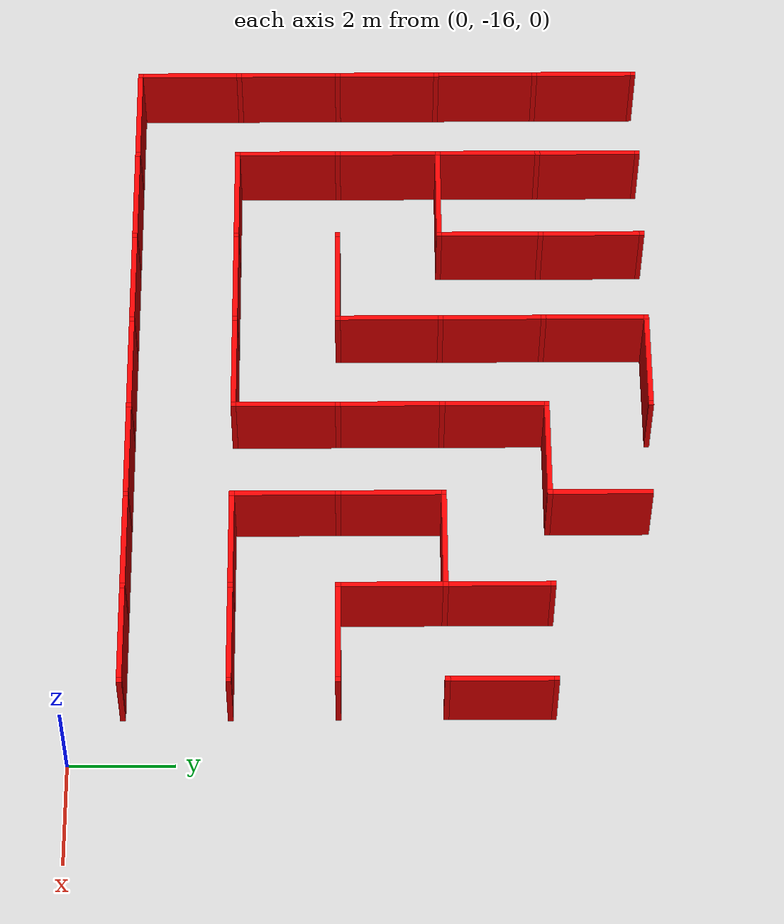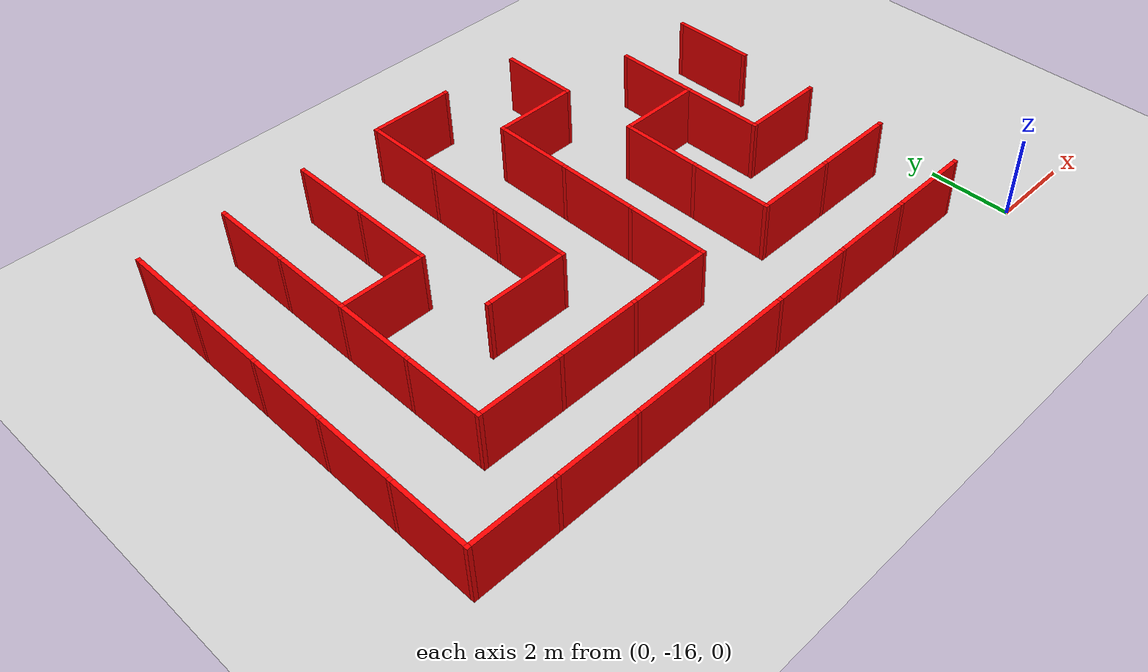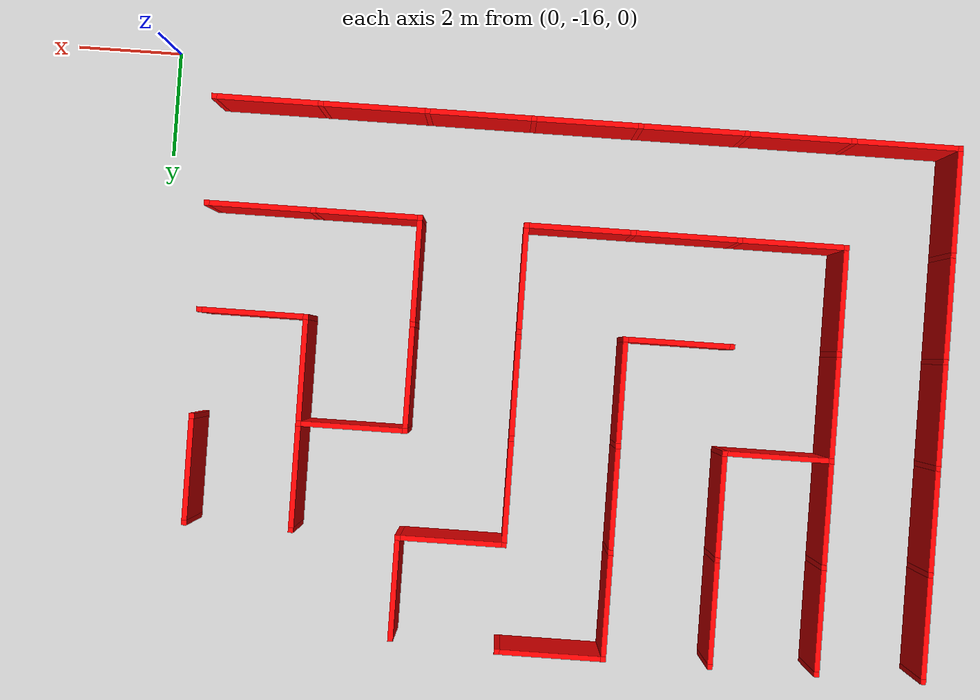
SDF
<sdf version="1.7">
 <world name="empty">
  <model name="ground_plane">
   <static>true</static>
   <link name="link">
    <collision name="collision1">
     <geometry><plane><normal>0 0 1</normal><size>1 1</size></plane></geometry>
    </collision>
    <visual name="visual1"><geometry><plane><normal>0 0 1</normal><size>100 100</size></plane></geometry></visual>
   </link>
  </model>
  <model name="Untitled">
   <link name="Wall_0_10_v">
    <collision name="Wall_0_Collision">
     <geometry><box><size>1.9 0.1 1.5</size></box></geometry>
     <pose>0 0 0.75 0 -0 0</pose>
    </collision>
    <visual name="Wall_0_Visual">
     <pose>0 0 0.75 0 -0 0</pose>
     <geometry><box><size>1.9 0.1 1.5</size></box></geometry>
     <material><ambient>1 0 0 1</ambient><diffuse>1 0 0 1</diffuse><specular>0.1 0.1 0.1 1</specular></material>
     <meta><layer>0</layer></meta>
    </visual>
    <pose>-15 -6 0 0 -0 1.5708</pose>
   </link>
   <link name="Joint_-15_-5">
    <collision name="Wall_2_Collision">
     <geometry><box><size>0.1 0.1 1.5</size></box></geometry>
     <pose>0 0 0.75 0 -0 0</pose>
    </collision>
    <visual name="Wall_2_Visual">
     <pose>0 0 0.75 0 -0 0</pose>
     <geometry><box><size>0.1 0.1 1.5</size></box></geometry>
     <material><ambient>1 0 0 1</ambient><diffuse>1 0 0 1</diffuse><specular>0.1 0.1 0.1 1</specular></material>
     <meta><layer>0</layer></meta>
    </visual>
    <pose>-15 -5 0 0 -0 0</pose>
   </link>
   <link name="Wall_1_10_v">
    <collision name="Wall_0_Collision">
     <geometry><box><size>1.9 0.1 1.5</size></box></geometry>
     <pose>0 0 0.75 0 -0 0</pose>
    </collision>
    <visual name="Wall_0_Visual">
     <pose>0 0 0.75 0 -0 0</pose>
     <geometry><box><size>1.9 0.1 1.5</size></box></geometry>
     <material><ambient>1 0 0 1</ambient><diffuse>1 0 0 1</diffuse><specular>0.1 0.1 0.1 1</specular></material>
     <meta><layer>0</layer></meta>
    </visual>
    <pose>-13 -6 0 0 -0 1.5708</pose>
   </link>
   <link name="Joint_-13_-5">
    <collision name="Wall_2_Collision">
     <geometry><box><size>0.1 0.1 1.5</size></box></geometry>
     <pose>0 0 0.75 0 -0 0</pose>
    </collision>
    <visual name="Wall_2_Visual">
     <pose>0 0 0.75 0 -0 0</pose>
     <geometry><box><size>0.1 0.1 1.5</size></box></geometry>
     <material><ambient>1 0 0 1</ambient><diffuse>1 0 0 1</diffuse><specular>0.1 0.1 0.1 1</specular></material>
     <meta><layer>0</layer></meta>
    </visual>
    <pose>-13 -5 0 0 -0 0</pose>
   </link>
   <link name="Wall_2_10_v">
    <collision name="Wall_0_Collision">
     <geometry><box><size>1.9 0.1 1.5</size></box></geometry>
     <pose>0 0 0.75 0 -0 0</pose>
    </collision>
    <visual name="Wall_0_Visual">
     <pose>0 0 0.75 0 -0 0</pose>
     <geometry><box><size>1.9 0.1 1.5</size></box></geometry>
     <material><ambient>1 0 0 1</ambient><diffuse>1 0 0 1</diffuse><specular>0.1 0.1 0.1 1</specular></material>
     <meta><layer>0</layer></meta>
    </visual>
    <pose>-11 -6 0 0 -0 1.5708</pose>
   </link>
   <link name="Joint_-11_-5">
    <collision name="Wall_2_Collision">
     <geometry><box><size>0.1 0.1 1.5</size></box></geometry>
     <pose>0 0 0.75 0 -0 0</pose>
    </collision>
    <visual name="Wall_2_Visual">
     <pose>0 0 0.75 0 -0 0</pose>
     <geometry><box><size>0.1 0.1 1.5</size></box></geometry>
     <material><ambient>1 0 0 1</ambient><diffuse>1 0 0 1</diffuse><specular>0.1 0.1 0.1 1</specular></material>
     <meta><layer>0</layer></meta>
    </visual>
    <pose>-11 -5 0 0 -0 0</pose>
   </link>
   <link name="Wall_3_10_h">
    <collision name="Wall_0_Collision">
     <geometry><box><size>1.9 0.1 1.5</size></box></geometry>
     <pose>0 0 0.75 0 -0 0</pose>
    </collision>
    <visual name="Wall_0_Visual">
     <pose>0 0 0.75 0 -0 0</pose>
     <geometry><box><size>1.9 0.1 1.5</size></box></geometry>
     <material><ambient>1 0 0 1</ambient><diffuse>1 0 0 1</diffuse><specular>0.1 0.1 0.1 1</specular></material>
     <meta><layer>0</layer></meta>
    </visual>
    <pose>-8 -5 0 0 -0 0</pose>
   </link>
   <link name="Wall_3_10_v">
    <collision name="Wall_0_Collision">
     <geometry><box><size>1.9 0.1 1.5</size></box></geometry>
     <pose>0 0 0.75 0 -0 0</pose>
    </collision>
    <visual name="Wall_0_Visual">
     <pose>0 0 0.75 0 -0 0</pose>
     <geometry><box><size>1.9 0.1 1.5</size></box></geometry>
     <material><ambient>1 0 0 1</ambient><diffuse>1 0 0 1</diffuse><specular>0.1 0.1 0.1 1</specular></material>
     <meta><layer>0</layer></meta>
    </visual>
    <pose>-9 -6 0 0 -0 1.5708</pose>
   </link>
   <link name="Joint_-9_-5">
    <collision name="Wall_2_Collision">
     <geometry><box><size>0.1 0.1 1.5</size></box></geometry>
     <pose>0 0 0.75 0 -0 0</pose>
    </collision>
    <visual name="Wall_2_Visual">
     <pose>0 0 0.75 0 -0 0</pose>
     <geometry><box><size>0.1 0.1 1.5</size></box></geometry>
     <material><ambient>1 0 0 1</ambient><diffuse>1 0 0 1</diffuse><specular>0.1 0.1 0.1 1</specular></material>
     <meta><layer>0</layer></meta>
    </visual>
    <pose>-9 -5 0 0 -0 0</pose>
   </link>
   <link name="Joint_-7_-5">
    <collision name="Wall_2_Collision">
     <geometry><box><size>0.1 0.1 1.5</size></box></geometry>
     <pose>0 0 0.75 0 -0 0</pose>
    </collision>
    <visual name="Wall_2_Visual">
     <pose>0 0 0.75 0 -0 0</pose>
     <geometry><box><size>0.1 0.1 1.5</size></box></geometry>
     <material><ambient>1 0 0 1</ambient><diffuse>1 0 0 1</diffuse><specular>0.1 0.1 0.1 1</specular></material>
     <meta><layer>0</layer></meta>
    </visual>
    <pose>-7 -5 0 0 -0 0</pose>
   </link>
   <link name="Wall_5_10_v">
    <collision name="Wall_0_Collision">
     <geometry><box><size>1.9 0.1 1.5</size></box></geometry>
     <pose>0 0 0.75 0 -0 0</pose>
    </collision>
    <visual name="Wall_0_Visual">
     <pose>0 0 0.75 0 -0 0</pose>
     <geometry><box><size>1.9 0.1 1.5</size></box></geometry>
     <material><ambient>1 0 0 1</ambient><diffuse>1 0 0 1</diffuse><specular>0.1 0.1 0.1 1</specular></material>
     <meta><layer>0</layer></meta>
    </visual>
    <pose>-5 -6 0 0 -0 1.5708</pose>
   </link>
   <link name="Wall_0_11_v">
    <collision name="Wall_0_Collision">
     <geometry><box><size>1.9 0.1 1.5</size></box></geometry>
     <pose>0 0 0.75 0 -0 0</pose>
    </collision>
    <visual name="Wall_0_Visual">
     <pose>0 0 0.75 0 -0 0</pose>
     <geometry><box><size>1.9 0.1 1.5</size></box></geometry>
     <material><ambient>1 0 0 1</ambient><diffuse>1 0 0 1</diffuse><specular>0.1 0.1 0.1 1</specular></material>
     <meta><layer>0</layer></meta>
    </visual>
    <pose>-15 -8 0 0 -0 1.5708</pose>
   </link>
   <link name="Joint_-15_-7">
    <collision name="Wall_2_Collision">
     <geometry><box><size>0.1 0.1 1.5</size></box></geometry>
     <pose>0 0 0.75 0 -0 0</pose>
    </collision>
    <visual name="Wall_2_Visual">
     <pose>0 0 0.75 0 -0 0</pose>
     <geometry><box><size>0.1 0.1 1.5</size></box></geometry>
     <material><ambient>1 0 0 1</ambient><diffuse>1 0 0 1</diffuse><specular>0.1 0.1 0.1 1</specular></material>
     <meta><layer>0</layer></meta>
    </visual>
    <pose>-15 -7 0 0 -0 0</pose>
   </link>
   <link name="Wall_1_11_v">
    <collision name="Wall_0_Collision">
     <geometry><box><size>1.9 0.1 1.5</size></box></geometry>
     <pose>0 0 0.75 0 -0 0</pose>
    </collision>
    <visual name="Wall_0_Visual">
     <pose>0 0 0.75 0 -0 0</pose>
     <geometry><box><size>1.9 0.1 1.5</size></box></geometry>
     <material><ambient>1 0 0 1</ambient><diffuse>1 0 0 1</diffuse><specular>0.1 0.1 0.1 1</specular></material>
     <meta><layer>0</layer></meta>
    </visual>
    <pose>-13 -8 0 0 -0 1.5708</pose>
   </link>
   <link name="Joint_-13_-7">
    <collision name="Wall_2_Collision">
     <geometry><box><size>0.1 0.1 1.5</size></box></geometry>
     <pose>0 0 0.75 0 -0 0</pose>
    </collision>
    <visual name="Wall_2_Visual">
     <pose>0 0 0.75 0 -0 0</pose>
     <geometry><box><size>0.1 0.1 1.5</size></box></geometry>
     <material><ambient>1 0 0 1</ambient><diffuse>1 0 0 1</diffuse><specular>0.1 0.1 0.1 1</specular></material>
     <meta><layer>0</layer></meta>
    </visual>
    <pose>-13 -7 0 0 -0 0</pose>
   </link>
   <link name="Wall_2_11_v">
    <collision name="Wall_0_Collision">
     <geometry><box><size>1.9 0.1 1.5</size></box></geometry>
     <pose>0 0 0.75 0 -0 0</pose>
    </collision>
    <visual name="Wall_0_Visual">
     <pose>0 0 0.75 0 -0 0</pose>
     <geometry><box><size>1.9 0.1 1.5</size></box></geometry>
     <material><ambient>1 0 0 1</ambient><diffuse>1 0 0 1</diffuse><specular>0.1 0.1 0.1 1</specular></material>
     <meta><layer>0</layer></meta>
    </visual>
    <pose>-11 -8 0 0 -0 1.5708</pose>
   </link>
   <link name="Joint_-11_-7">
    <collision name="Wall_2_Collision">
     <geometry><box><size>0.1 0.1 1.5</size></box></geometry>
     <pose>0 0 0.75 0 -0 0</pose>
    </collision>
    <visual name="Wall_2_Visual">
     <pose>0 0 0.75 0 -0 0</pose>
     <geometry><box><size>0.1 0.1 1.5</size></box></geometry>
     <material><ambient>1 0 0 1</ambient><diffuse>1 0 0 1</diffuse><specular>0.1 0.1 0.1 1</specular></material>
     <meta><layer>0</layer></meta>
    </visual>
    <pose>-11 -7 0 0 -0 0</pose>
   </link>
   <link name="Wall_3_11_v">
    <collision name="Wall_0_Collision">
     <geometry><box><size>1.9 0.1 1.5</size></box></geometry>
     <pose>0 0 0.75 0 -0 0</pose>
    </collision>
    <visual name="Wall_0_Visual">
     <pose>0 0 0.75 0 -0 0</pose>
     <geometry><box><size>1.9 0.1 1.5</size></box></geometry>
     <material><ambient>1 0 0 1</ambient><diffuse>1 0 0 1</diffuse><specular>0.1 0.1 0.1 1</specular></material>
     <meta><layer>0</layer></meta>
    </visual>
    <pose>-9 -8 0 0 -0 1.5708</pose>
   </link>
   <link name="Joint_-9_-7">
    <collision name="Wall_2_Collision">
     <geometry><box><size>0.1 0.1 1.5</size></box></geometry>
     <pose>0 0 0.75 0 -0 0</pose>
    </collision>
    <visual name="Wall_2_Visual">
     <pose>0 0 0.75 0 -0 0</pose>
     <geometry><box><size>0.1 0.1 1.5</size></box></geometry>
     <material><ambient>1 0 0 1</ambient><diffuse>1 0 0 1</diffuse><specular>0.1 0.1 0.1 1</specular></material>
     <meta><layer>0</layer></meta>
    </visual>
    <pose>-9 -7 0 0 -0 0</pose>
   </link>
   <link name="Wall_4_11_h">
    <collision name="Wall_0_Collision">
     <geometry><box><size>1.9 0.1 1.5</size></box></geometry>
     <pose>0 0 0.75 0 -0 0</pose>
    </collision>
    <visual name="Wall_0_Visual">
     <pose>0 0 0.75 0 -0 0</pose>
     <geometry><box><size>1.9 0.1 1.5</size></box></geometry>
     <material><ambient>1 0 0 1</ambient><diffuse>1 0 0 1</diffuse><specular>0.1 0.1 0.1 1</specular></material>
     <meta><layer>0</layer></meta>
    </visual>
    <pose>-6 -7 0 0 -0 0</pose>
   </link>
   <link name="Wall_4_11_v">
    <collision name="Wall_0_Collision">
     <geometry><box><size>1.9 0.1 1.5</size></box></geometry>
     <pose>0 0 0.75 0 -0 0</pose>
    </collision>
    <visual name="Wall_0_Visual">
     <pose>0 0 0.75 0 -0 0</pose>
     <geometry><box><size>1.9 0.1 1.5</size></box></geometry>
     <material><ambient>1 0 0 1</ambient><diffuse>1 0 0 1</diffuse><specular>0.1 0.1 0.1 1</specular></material>
     <meta><layer>0</layer></meta>
    </visual>
    <pose>-7 -8 0 0 -0 1.5708</pose>
   </link>
   <link name="Joint_-7_-7">
    <collision name="Wall_2_Collision">
     <geometry><box><size>0.1 0.1 1.5</size></box></geometry>
     <pose>0 0 0.75 0 -0 0</pose>
    </collision>
    <visual name="Wall_2_Visual">
     <pose>0 0 0.75 0 -0 0</pose>
     <geometry><box><size>0.1 0.1 1.5</size></box></geometry>
     <material><ambient>1 0 0 1</ambient><diffuse>1 0 0 1</diffuse><specular>0.1 0.1 0.1 1</specular></material>
     <meta><layer>0</layer></meta>
    </visual>
    <pose>-7 -7 0 0 -0 0</pose>
   </link>
   <link name="Joint_-5_-7">
    <collision name="Wall_2_Collision">
     <geometry><box><size>0.1 0.1 1.5</size></box></geometry>
     <pose>0 0 0.75 0 -0 0</pose>
    </collision>
    <visual name="Wall_2_Visual">
     <pose>0 0 0.75 0 -0 0</pose>
     <geometry><box><size>0.1 0.1 1.5</size></box></geometry>
     <material><ambient>1 0 0 1</ambient><diffuse>1 0 0 1</diffuse><specular>0.1 0.1 0.1 1</specular></material>
     <meta><layer>0</layer></meta>
    </visual>
    <pose>-5 -7 0 0 -0 0</pose>
   </link>
   <link name="Wall_6_11_v">
    <collision name="Wall_0_Collision">
     <geometry><box><size>1.9 0.1 1.5</size></box></geometry>
     <pose>0 0 0.75 0 -0 0</pose>
    </collision>
    <visual name="Wall_0_Visual">
     <pose>0 0 0.75 0 -0 0</pose>
     <geometry><box><size>1.9 0.1 1.5</size></box></geometry>
     <material><ambient>1 0 0 1</ambient><diffuse>1 0 0 1</diffuse><specular>0.1 0.1 0.1 1</specular></material>
     <meta><layer>0</layer></meta>
    </visual>
    <pose>-3 -8 0 0 -0 1.5708</pose>
   </link>
   <link name="Joint_-3_-7">
    <collision name="Wall_2_Collision">
     <geometry><box><size>0.1 0.1 1.5</size></box></geometry>
     <pose>0 0 0.75 0 -0 0</pose>
    </collision>
    <visual name="Wall_2_Visual">
     <pose>0 0 0.75 0 -0 0</pose>
     <geometry><box><size>0.1 0.1 1.5</size></box></geometry>
     <material><ambient>1 0 0 1</ambient><diffuse>1 0 0 1</diffuse><specular>0.1 0.1 0.1 1</specular></material>
     <meta><layer>0</layer></meta>
    </visual>
    <pose>-3 -7 0 0 -0 0</pose>
   </link>
   <link name="Wall_7_11_v">
    <collision name="Wall_0_Collision">
     <geometry><box><size>1.9 0.1 1.5</size></box></geometry>
     <pose>0 0 0.75 0 -0 0</pose>
    </collision>
    <visual name="Wall_0_Visual">
     <pose>0 0 0.75 0 -0 0</pose>
     <geometry><box><size>1.9 0.1 1.5</size></box></geometry>
     <material><ambient>1 0 0 1</ambient><diffuse>1 0 0 1</diffuse><specular>0.1 0.1 0.1 1</specular></material>
     <meta><layer>0</layer></meta>
    </visual>
    <pose>-1 -8 0 0 -0 1.5708</pose>
   </link>
   <link name="Joint_-1_-7">
    <collision name="Wall_2_Collision">
     <geometry><box><size>0.1 0.1 1.5</size></box></geometry>
     <pose>0 0 0.75 0 -0 0</pose>
    </collision>
    <visual name="Wall_2_Visual">
     <pose>0 0 0.75 0 -0 0</pose>
     <geometry><box><size>0.1 0.1 1.5</size></box></geometry>
     <material><ambient>1 0 0 1</ambient><diffuse>1 0 0 1</diffuse><specular>0.1 0.1 0.1 1</specular></material>
     <meta><layer>0</layer></meta>
    </visual>
    <pose>-1 -7 0 0 -0 0</pose>
   </link>
   <link name="Wall_0_12_v">
    <collision name="Wall_0_Collision">
     <geometry><box><size>1.9 0.1 1.5</size></box></geometry>
     <pose>0 0 0.75 0 -0 0</pose>
    </collision>
    <visual name="Wall_0_Visual">
     <pose>0 0 0.75 0 -0 0</pose>
     <geometry><box><size>1.9 0.1 1.5</size></box></geometry>
     <material><ambient>1 0 0 1</ambient><diffuse>1 0 0 1</diffuse><specular>0.1 0.1 0.1 1</specular></material>
     <meta><layer>0</layer></meta>
    </visual>
    <pose>-15 -10 0 0 -0 1.5708</pose>
   </link>
   <link name="Joint_-15_-9">
    <collision name="Wall_2_Collision">
     <geometry><box><size>0.1 0.1 1.5</size></box></geometry>
     <pose>0 0 0.75 0 -0 0</pose>
    </collision>
    <visual name="Wall_2_Visual">
     <pose>0 0 0.75 0 -0 0</pose>
     <geometry><box><size>0.1 0.1 1.5</size></box></geometry>
     <material><ambient>1 0 0 1</ambient><diffuse>1 0 0 1</diffuse><specular>0.1 0.1 0.1 1</specular></material>
     <meta><layer>0</layer></meta>
    </visual>
    <pose>-15 -9 0 0 -0 0</pose>
   </link>
   <link name="Wall_1_12_h">
    <collision name="Wall_0_Collision">
     <geometry><box><size>1.9 0.1 1.5</size></box></geometry>
     <pose>0 0 0.75 0 -0 0</pose>
    </collision>
    <visual name="Wall_0_Visual">
     <pose>0 0 0.75 0 -0 0</pose>
     <geometry><box><size>1.9 0.1 1.5</size></box></geometry>
     <material><ambient>1 0 0 1</ambient><diffuse>1 0 0 1</diffuse><specular>0.1 0.1 0.1 1</specular></material>
     <meta><layer>0</layer></meta>
    </visual>
    <pose>-12 -9 0 0 -0 0</pose>
   </link>
   <link name="Wall_1_12_v">
    <collision name="Wall_0_Collision">
     <geometry><box><size>1.9 0.1 1.5</size></box></geometry>
     <pose>0 0 0.75 0 -0 0</pose>
    </collision>
    <visual name="Wall_0_Visual">
     <pose>0 0 0.75 0 -0 0</pose>
     <geometry><box><size>1.9 0.1 1.5</size></box></geometry>
     <material><ambient>1 0 0 1</ambient><diffuse>1 0 0 1</diffuse><specular>0.1 0.1 0.1 1</specular></material>
     <meta><layer>0</layer></meta>
    </visual>
    <pose>-13 -10 0 0 -0 1.5708</pose>
   </link>
   <link name="Joint_-13_-9">
    <collision name="Wall_2_Collision">
     <geometry><box><size>0.1 0.1 1.5</size></box></geometry>
     <pose>0 0 0.75 0 -0 0</pose>
    </collision>
    <visual name="Wall_2_Visual">
     <pose>0 0 0.75 0 -0 0</pose>
     <geometry><box><size>0.1 0.1 1.5</size></box></geometry>
     <material><ambient>1 0 0 1</ambient><diffuse>1 0 0 1</diffuse><specular>0.1 0.1 0.1 1</specular></material>
     <meta><layer>0</layer></meta>
    </visual>
    <pose>-13 -9 0 0 -0 0</pose>
   </link>
   <link name="Joint_-11_-9">
    <collision name="Wall_2_Collision">
     <geometry><box><size>0.1 0.1 1.5</size></box></geometry>
     <pose>0 0 0.75 0 -0 0</pose>
    </collision>
    <visual name="Wall_2_Visual">
     <pose>0 0 0.75 0 -0 0</pose>
     <geometry><box><size>0.1 0.1 1.5</size></box></geometry>
     <material><ambient>1 0 0 1</ambient><diffuse>1 0 0 1</diffuse><specular>0.1 0.1 0.1 1</specular></material>
     <meta><layer>0</layer></meta>
    </visual>
    <pose>-11 -9 0 0 -0 0</pose>
   </link>
   <link name="Wall_3_12_v">
    <collision name="Wall_0_Collision">
     <geometry><box><size>1.9 0.1 1.5</size></box></geometry>
     <pose>0 0 0.75 0 -0 0</pose>
    </collision>
    <visual name="Wall_0_Visual">
     <pose>0 0 0.75 0 -0 0</pose>
     <geometry><box><size>1.9 0.1 1.5</size></box></geometry>
     <material><ambient>1 0 0 1</ambient><diffuse>1 0 0 1</diffuse><specular>0.1 0.1 0.1 1</specular></material>
     <meta><layer>0</layer></meta>
    </visual>
    <pose>-9 -10 0 0 -0 1.5708</pose>
   </link>
   <link name="Joint_-9_-9">
    <collision name="Wall_2_Collision">
     <geometry><box><size>0.1 0.1 1.5</size></box></geometry>
     <pose>0 0 0.75 0 -0 0</pose>
    </collision>
    <visual name="Wall_2_Visual">
     <pose>0 0 0.75 0 -0 0</pose>
     <geometry><box><size>0.1 0.1 1.5</size></box></geometry>
     <material><ambient>1 0 0 1</ambient><diffuse>1 0 0 1</diffuse><specular>0.1 0.1 0.1 1</specular></material>
     <meta><layer>0</layer></meta>
    </visual>
    <pose>-9 -9 0 0 -0 0</pose>
   </link>
   <link name="Wall_4_12_v">
    <collision name="Wall_0_Collision">
     <geometry><box><size>1.9 0.1 1.5</size></box></geometry>
     <pose>0 0 0.75 0 -0 0</pose>
    </collision>
    <visual name="Wall_0_Visual">
     <pose>0 0 0.75 0 -0 0</pose>
     <geometry><box><size>1.9 0.1 1.5</size></box></geometry>
     <material><ambient>1 0 0 1</ambient><diffuse>1 0 0 1</diffuse><specular>0.1 0.1 0.1 1</specular></material>
     <meta><layer>0</layer></meta>
    </visual>
    <pose>-7 -10 0 0 -0 1.5708</pose>
   </link>
   <link name="Joint_-7_-9">
    <collision name="Wall_2_Collision">
     <geometry><box><size>0.1 0.1 1.5</size></box></geometry>
     <pose>0 0 0.75 0 -0 0</pose>
    </collision>
    <visual name="Wall_2_Visual">
     <pose>0 0 0.75 0 -0 0</pose>
     <geometry><box><size>0.1 0.1 1.5</size></box></geometry>
     <material><ambient>1 0 0 1</ambient><diffuse>1 0 0 1</diffuse><specular>0.1 0.1 0.1 1</specular></material>
     <meta><layer>0</layer></meta>
    </visual>
    <pose>-7 -9 0 0 -0 0</pose>
   </link>
   <link name="Wall_5_12_h">
    <collision name="Wall_0_Collision">
     <geometry><box><size>1.9 0.1 1.5</size></box></geometry>
     <pose>0 0 0.75 0 -0 0</pose>
    </collision>
    <visual name="Wall_0_Visual">
     <pose>0 0 0.75 0 -0 0</pose>
     <geometry><box><size>1.9 0.1 1.5</size></box></geometry>
     <material><ambient>1 0 0 1</ambient><diffuse>1 0 0 1</diffuse><specular>0.1 0.1 0.1 1</specular></material>
     <meta><layer>0</layer></meta>
    </visual>
    <pose>-4 -9 0 0 -0 0</pose>
   </link>
   <link name="Wall_5_12_v">
    <collision name="Wall_0_Collision">
     <geometry><box><size>1.9 0.1 1.5</size></box></geometry>
     <pose>0 0 0.75 0 -0 0</pose>
    </collision>
    <visual name="Wall_0_Visual">
     <pose>0 0 0.75 0 -0 0</pose>
     <geometry><box><size>1.9 0.1 1.5</size></box></geometry>
     <material><ambient>1 0 0 1</ambient><diffuse>1 0 0 1</diffuse><specular>0.1 0.1 0.1 1</specular></material>
     <meta><layer>0</layer></meta>
    </visual>
    <pose>-5 -10 0 0 -0 1.5708</pose>
   </link>
   <link name="Joint_-5_-9">
    <collision name="Wall_2_Collision">
     <geometry><box><size>0.1 0.1 1.5</size></box></geometry>
     <pose>0 0 0.75 0 -0 0</pose>
    </collision>
    <visual name="Wall_2_Visual">
     <pose>0 0 0.75 0 -0 0</pose>
     <geometry><box><size>0.1 0.1 1.5</size></box></geometry>
     <material><ambient>1 0 0 1</ambient><diffuse>1 0 0 1</diffuse><specular>0.1 0.1 0.1 1</specular></material>
     <meta><layer>0</layer></meta>
    </visual>
    <pose>-5 -9 0 0 -0 0</pose>
   </link>
   <link name="Wall_6_12_v">
    <collision name="Wall_0_Collision">
     <geometry><box><size>1.9 0.1 1.5</size></box></geometry>
     <pose>0 0 0.75 0 -0 0</pose>
    </collision>
    <visual name="Wall_0_Visual">
     <pose>0 0 0.75 0 -0 0</pose>
     <geometry><box><size>1.9 0.1 1.5</size></box></geometry>
     <material><ambient>1 0 0 1</ambient><diffuse>1 0 0 1</diffuse><specular>0.1 0.1 0.1 1</specular></material>
     <meta><layer>0</layer></meta>
    </visual>
    <pose>-3 -10 0 0 -0 1.5708</pose>
   </link>
   <link name="Joint_-3_-9">
    <collision name="Wall_2_Collision">
     <geometry><box><size>0.1 0.1 1.5</size></box></geometry>
     <pose>0 0 0.75 0 -0 0</pose>
    </collision>
    <visual name="Wall_2_Visual">
     <pose>0 0 0.75 0 -0 0</pose>
     <geometry><box><size>0.1 0.1 1.5</size></box></geometry>
     <material><ambient>1 0 0 1</ambient><diffuse>1 0 0 1</diffuse><specular>0.1 0.1 0.1 1</specular></material>
     <meta><layer>0</layer></meta>
    </visual>
    <pose>-3 -9 0 0 -0 0</pose>
   </link>
   <link name="Joint_-1_-9">
    <collision name="Wall_2_Collision">
     <geometry><box><size>0.1 0.1 1.5</size></box></geometry>
     <pose>0 0 0.75 0 -0 0</pose>
    </collision>
    <visual name="Wall_2_Visual">
     <pose>0 0 0.75 0 -0 0</pose>
     <geometry><box><size>0.1 0.1 1.5</size></box></geometry>
     <material><ambient>1 0 0 1</ambient><diffuse>1 0 0 1</diffuse><specular>0.1 0.1 0.1 1</specular></material>
     <meta><layer>0</layer></meta>
    </visual>
    <pose>-1 -9 0 0 -0 0</pose>
   </link>
   <link name="Wall_0_13_v">
    <collision name="Wall_0_Collision">
     <geometry><box><size>1.9 0.1 1.5</size></box></geometry>
     <pose>0 0 0.75 0 -0 0</pose>
    </collision>
    <visual name="Wall_0_Visual">
     <pose>0 0 0.75 0 -0 0</pose>
     <geometry><box><size>1.9 0.1 1.5</size></box></geometry>
     <material><ambient>1 0 0 1</ambient><diffuse>1 0 0 1</diffuse><specular>0.1 0.1 0.1 1</specular></material>
     <meta><layer>0</layer></meta>
    </visual>
    <pose>-15 -12 0 0 -0 1.5708</pose>
   </link>
   <link name="Joint_-15_-11">
    <collision name="Wall_2_Collision">
     <geometry><box><size>0.1 0.1 1.5</size></box></geometry>
     <pose>0 0 0.75 0 -0 0</pose>
    </collision>
    <visual name="Wall_2_Visual">
     <pose>0 0 0.75 0 -0 0</pose>
     <geometry><box><size>0.1 0.1 1.5</size></box></geometry>
     <material><ambient>1 0 0 1</ambient><diffuse>1 0 0 1</diffuse><specular>0.1 0.1 0.1 1</specular></material>
     <meta><layer>0</layer></meta>
    </visual>
    <pose>-15 -11 0 0 -0 0</pose>
   </link>
   <link name="Wall_1_13_v">
    <collision name="Wall_0_Collision">
     <geometry><box><size>1.9 0.1 1.5</size></box></geometry>
     <pose>0 0 0.75 0 -0 0</pose>
    </collision>
    <visual name="Wall_0_Visual">
     <pose>0 0 0.75 0 -0 0</pose>
     <geometry><box><size>1.9 0.1 1.5</size></box></geometry>
     <material><ambient>1 0 0 1</ambient><diffuse>1 0 0 1</diffuse><specular>0.1 0.1 0.1 1</specular></material>
     <meta><layer>0</layer></meta>
    </visual>
    <pose>-13 -12 0 0 -0 1.5708</pose>
   </link>
   <link name="Joint_-13_-11">
    <collision name="Wall_2_Collision">
     <geometry><box><size>0.1 0.1 1.5</size></box></geometry>
     <pose>0 0 0.75 0 -0 0</pose>
    </collision>
    <visual name="Wall_2_Visual">
     <pose>0 0 0.75 0 -0 0</pose>
     <geometry><box><size>0.1 0.1 1.5</size></box></geometry>
     <material><ambient>1 0 0 1</ambient><diffuse>1 0 0 1</diffuse><specular>0.1 0.1 0.1 1</specular></material>
     <meta><layer>0</layer></meta>
    </visual>
    <pose>-13 -11 0 0 -0 0</pose>
   </link>
   <link name="Wall_2_13_h">
    <collision name="Wall_0_Collision">
     <geometry><box><size>1.9 0.1 1.5</size></box></geometry>
     <pose>0 0 0.75 0 -0 0</pose>
    </collision>
    <visual name="Wall_0_Visual">
     <pose>0 0 0.75 0 -0 0</pose>
     <geometry><box><size>1.9 0.1 1.5</size></box></geometry>
     <material><ambient>1 0 0 1</ambient><diffuse>1 0 0 1</diffuse><specular>0.1 0.1 0.1 1</specular></material>
     <meta><layer>0</layer></meta>
    </visual>
    <pose>-10 -11 0 0 -0 0</pose>
   </link>
   <link name="Joint_-11_-11">
    <collision name="Wall_2_Collision">
     <geometry><box><size>0.1 0.1 1.5</size></box></geometry>
     <pose>0 0 0.75 0 -0 0</pose>
    </collision>
    <visual name="Wall_2_Visual">
     <pose>0 0 0.75 0 -0 0</pose>
     <geometry><box><size>0.1 0.1 1.5</size></box></geometry>
     <material><ambient>1 0 0 1</ambient><diffuse>1 0 0 1</diffuse><specular>0.1 0.1 0.1 1</specular></material>
     <meta><layer>0</layer></meta>
    </visual>
    <pose>-11 -11 0 0 -0 0</pose>
   </link>
   <link name="Joint_-9_-11">
    <collision name="Wall_2_Collision">
     <geometry><box><size>0.1 0.1 1.5</size></box></geometry>
     <pose>0 0 0.75 0 -0 0</pose>
    </collision>
    <visual name="Wall_2_Visual">
     <pose>0 0 0.75 0 -0 0</pose>
     <geometry><box><size>0.1 0.1 1.5</size></box></geometry>
     <material><ambient>1 0 0 1</ambient><diffuse>1 0 0 1</diffuse><specular>0.1 0.1 0.1 1</specular></material>
     <meta><layer>0</layer></meta>
    </visual>
    <pose>-9 -11 0 0 -0 0</pose>
   </link>
   <link name="Wall_4_13_v">
    <collision name="Wall_0_Collision">
     <geometry><box><size>1.9 0.1 1.5</size></box></geometry>
     <pose>0 0 0.75 0 -0 0</pose>
    </collision>
    <visual name="Wall_0_Visual">
     <pose>0 0 0.75 0 -0 0</pose>
     <geometry><box><size>1.9 0.1 1.5</size></box></geometry>
     <material><ambient>1 0 0 1</ambient><diffuse>1 0 0 1</diffuse><specular>0.1 0.1 0.1 1</specular></material>
     <meta><layer>0</layer></meta>
    </visual>
    <pose>-7 -12 0 0 -0 1.5708</pose>
   </link>
   <link name="Joint_-7_-11">
    <collision name="Wall_2_Collision">
     <geometry><box><size>0.1 0.1 1.5</size></box></geometry>
     <pose>0 0 0.75 0 -0 0</pose>
    </collision>
    <visual name="Wall_2_Visual">
     <pose>0 0 0.75 0 -0 0</pose>
     <geometry><box><size>0.1 0.1 1.5</size></box></geometry>
     <material><ambient>1 0 0 1</ambient><diffuse>1 0 0 1</diffuse><specular>0.1 0.1 0.1 1</specular></material>
     <meta><layer>0</layer></meta>
    </visual>
    <pose>-7 -11 0 0 -0 0</pose>
   </link>
   <link name="Wall_5_13_v">
    <collision name="Wall_0_Collision">
     <geometry><box><size>1.9 0.1 1.5</size></box></geometry>
     <pose>0 0 0.75 0 -0 0</pose>
    </collision>
    <visual name="Wall_0_Visual">
     <pose>0 0 0.75 0 -0 0</pose>
     <geometry><box><size>1.9 0.1 1.5</size></box></geometry>
     <material><ambient>1 0 0 1</ambient><diffuse>1 0 0 1</diffuse><specular>0.1 0.1 0.1 1</specular></material>
     <meta><layer>0</layer></meta>
    </visual>
    <pose>-5 -12 0 0 -0 1.5708</pose>
   </link>
   <link name="Joint_-5_-11">
    <collision name="Wall_2_Collision">
     <geometry><box><size>0.1 0.1 1.5</size></box></geometry>
     <pose>0 0 0.75 0 -0 0</pose>
    </collision>
    <visual name="Wall_2_Visual">
     <pose>0 0 0.75 0 -0 0</pose>
     <geometry><box><size>0.1 0.1 1.5</size></box></geometry>
     <material><ambient>1 0 0 1</ambient><diffuse>1 0 0 1</diffuse><specular>0.1 0.1 0.1 1</specular></material>
     <meta><layer>0</layer></meta>
    </visual>
    <pose>-5 -11 0 0 -0 0</pose>
   </link>
   <link name="Wall_6_13_h">
    <collision name="Wall_0_Collision">
     <geometry><box><size>1.9 0.1 1.5</size></box></geometry>
     <pose>0 0 0.75 0 -0 0</pose>
    </collision>
    <visual name="Wall_0_Visual">
     <pose>0 0 0.75 0 -0 0</pose>
     <geometry><box><size>1.9 0.1 1.5</size></box></geometry>
     <material><ambient>1 0 0 1</ambient><diffuse>1 0 0 1</diffuse><specular>0.1 0.1 0.1 1</specular></material>
     <meta><layer>0</layer></meta>
    </visual>
    <pose>-2 -11 0 0 -0 0</pose>
   </link>
   <link name="Joint_-3_-11">
    <collision name="Wall_2_Collision">
     <geometry><box><size>0.1 0.1 1.5</size></box></geometry>
     <pose>0 0 0.75 0 -0 0</pose>
    </collision>
    <visual name="Wall_2_Visual">
     <pose>0 0 0.75 0 -0 0</pose>
     <geometry><box><size>0.1 0.1 1.5</size></box></geometry>
     <material><ambient>1 0 0 1</ambient><diffuse>1 0 0 1</diffuse><specular>0.1 0.1 0.1 1</specular></material>
     <meta><layer>0</layer></meta>
    </visual>
    <pose>-3 -11 0 0 -0 0</pose>
   </link>
   <link name="Joint_-1_-11">
    <collision name="Wall_2_Collision">
     <geometry><box><size>0.1 0.1 1.5</size></box></geometry>
     <pose>0 0 0.75 0 -0 0</pose>
    </collision>
    <visual name="Wall_2_Visual">
     <pose>0 0 0.75 0 -0 0</pose>
     <geometry><box><size>0.1 0.1 1.5</size></box></geometry>
     <material><ambient>1 0 0 1</ambient><diffuse>1 0 0 1</diffuse><specular>0.1 0.1 0.1 1</specular></material>
     <meta><layer>0</layer></meta>
    </visual>
    <pose>-1 -11 0 0 -0 0</pose>
   </link>
   <link name="Wall_0_14_v">
    <collision name="Wall_0_Collision">
     <geometry><box><size>1.9 0.1 1.5</size></box></geometry>
     <pose>0 0 0.75 0 -0 0</pose>
    </collision>
    <visual name="Wall_0_Visual">
     <pose>0 0 0.75 0 -0 0</pose>
     <geometry><box><size>1.9 0.1 1.5</size></box></geometry>
     <material><ambient>1 0 0 1</ambient><diffuse>1 0 0 1</diffuse><specular>0.1 0.1 0.1 1</specular></material>
     <meta><layer>0</layer></meta>
    </visual>
    <pose>-15 -14 0 0 -0 1.5708</pose>
   </link>
   <link name="Joint_-15_-13">
    <collision name="Wall_2_Collision">
     <geometry><box><size>0.1 0.1 1.5</size></box></geometry>
     <pose>0 0 0.75 0 -0 0</pose>
    </collision>
    <visual name="Wall_2_Visual">
     <pose>0 0 0.75 0 -0 0</pose>
     <geometry><box><size>0.1 0.1 1.5</size></box></geometry>
     <material><ambient>1 0 0 1</ambient><diffuse>1 0 0 1</diffuse><specular>0.1 0.1 0.1 1</specular></material>
     <meta><layer>0</layer></meta>
    </visual>
    <pose>-15 -13 0 0 -0 0</pose>
   </link>
   <link name="Wall_0_15_h">
    <collision name="Wall_0_Collision">
     <geometry><box><size>1.9 0.1 1.5</size></box></geometry>
     <pose>0 0 0.75 0 -0 0</pose>
    </collision>
    <visual name="Wall_0_Visual">
     <pose>0 0 0.75 0 -0 0</pose>
     <geometry><box><size>1.9 0.1 1.5</size></box></geometry>
     <material><ambient>1 0 0 1</ambient><diffuse>1 0 0 1</diffuse><specular>0.1 0.1 0.1 1</specular></material>
     <meta><layer>0</layer></meta>
    </visual>
    <pose>-14 -15 0 0 -0 0</pose>
   </link>
   <link name="Joint_-15_-15">
    <collision name="Wall_2_Collision">
     <geometry><box><size>0.1 0.1 1.5</size></box></geometry>
     <pose>0 0 0.75 0 -0 0</pose>
    </collision>
    <visual name="Wall_2_Visual">
     <pose>0 0 0.75 0 -0 0</pose>
     <geometry><box><size>0.1 0.1 1.5</size></box></geometry>
     <material><ambient>1 0 0 1</ambient><diffuse>1 0 0 1</diffuse><specular>0.1 0.1 0.1 1</specular></material>
     <meta><layer>0</layer></meta>
    </visual>
    <pose>-15 -15 0 0 -0 0</pose>
   </link>
   <link name="Wall_1_14_h">
    <collision name="Wall_0_Collision">
     <geometry><box><size>1.9 0.1 1.5</size></box></geometry>
     <pose>0 0 0.75 0 -0 0</pose>
    </collision>
    <visual name="Wall_0_Visual">
     <pose>0 0 0.75 0 -0 0</pose>
     <geometry><box><size>1.9 0.1 1.5</size></box></geometry>
     <material><ambient>1 0 0 1</ambient><diffuse>1 0 0 1</diffuse><specular>0.1 0.1 0.1 1</specular></material>
     <meta><layer>0</layer></meta>
    </visual>
    <pose>-12 -13 0 0 -0 0</pose>
   </link>
   <link name="Joint_-13_-13">
    <collision name="Wall_2_Collision">
     <geometry><box><size>0.1 0.1 1.5</size></box></geometry>
     <pose>0 0 0.75 0 -0 0</pose>
    </collision>
    <visual name="Wall_2_Visual">
     <pose>0 0 0.75 0 -0 0</pose>
     <geometry><box><size>0.1 0.1 1.5</size></box></geometry>
     <material><ambient>1 0 0 1</ambient><diffuse>1 0 0 1</diffuse><specular>0.1 0.1 0.1 1</specular></material>
     <meta><layer>0</layer></meta>
    </visual>
    <pose>-13 -13 0 0 -0 0</pose>
   </link>
   <link name="Wall_1_15_h">
    <collision name="Wall_0_Collision">
     <geometry><box><size>1.9 0.1 1.5</size></box></geometry>
     <pose>0 0 0.75 0 -0 0</pose>
    </collision>
    <visual name="Wall_0_Visual">
     <pose>0 0 0.75 0 -0 0</pose>
     <geometry><box><size>1.9 0.1 1.5</size></box></geometry>
     <material><ambient>1 0 0 1</ambient><diffuse>1 0 0 1</diffuse><specular>0.1 0.1 0.1 1</specular></material>
     <meta><layer>0</layer></meta>
    </visual>
    <pose>-12 -15 0 0 -0 0</pose>
   </link>
   <link name="Joint_-13_-15">
    <collision name="Wall_2_Collision">
     <geometry><box><size>0.1 0.1 1.5</size></box></geometry>
     <pose>0 0 0.75 0 -0 0</pose>
    </collision>
    <visual name="Wall_2_Visual">
     <pose>0 0 0.75 0 -0 0</pose>
     <geometry><box><size>0.1 0.1 1.5</size></box></geometry>
     <material><ambient>1 0 0 1</ambient><diffuse>1 0 0 1</diffuse><specular>0.1 0.1 0.1 1</specular></material>
     <meta><layer>0</layer></meta>
    </visual>
    <pose>-13 -15 0 0 -0 0</pose>
   </link>
   <link name="Wall_2_14_h">
    <collision name="Wall_0_Collision">
     <geometry><box><size>1.9 0.1 1.5</size></box></geometry>
     <pose>0 0 0.75 0 -0 0</pose>
    </collision>
    <visual name="Wall_0_Visual">
     <pose>0 0 0.75 0 -0 0</pose>
     <geometry><box><size>1.9 0.1 1.5</size></box></geometry>
     <material><ambient>1 0 0 1</ambient><diffuse>1 0 0 1</diffuse><specular>0.1 0.1 0.1 1</specular></material>
     <meta><layer>0</layer></meta>
    </visual>
    <pose>-10 -13 0 0 -0 0</pose>
   </link>
   <link name="Joint_-11_-13">
    <collision name="Wall_2_Collision">
     <geometry><box><size>0.1 0.1 1.5</size></box></geometry>
     <pose>0 0 0.75 0 -0 0</pose>
    </collision>
    <visual name="Wall_2_Visual">
     <pose>0 0 0.75 0 -0 0</pose>
     <geometry><box><size>0.1 0.1 1.5</size></box></geometry>
     <material><ambient>1 0 0 1</ambient><diffuse>1 0 0 1</diffuse><specular>0.1 0.1 0.1 1</specular></material>
     <meta><layer>0</layer></meta>
    </visual>
    <pose>-11 -13 0 0 -0 0</pose>
   </link>
   <link name="Wall_2_15_h">
    <collision name="Wall_0_Collision">
     <geometry><box><size>1.9 0.1 1.5</size></box></geometry>
     <pose>0 0 0.75 0 -0 0</pose>
    </collision>
    <visual name="Wall_0_Visual">
     <pose>0 0 0.75 0 -0 0</pose>
     <geometry><box><size>1.9 0.1 1.5</size></box></geometry>
     <material><ambient>1 0 0 1</ambient><diffuse>1 0 0 1</diffuse><specular>0.1 0.1 0.1 1</specular></material>
     <meta><layer>0</layer></meta>
    </visual>
    <pose>-10 -15 0 0 -0 0</pose>
   </link>
   <link name="Joint_-11_-15">
    <collision name="Wall_2_Collision">
     <geometry><box><size>0.1 0.1 1.5</size></box></geometry>
     <pose>0 0 0.75 0 -0 0</pose>
    </collision>
    <visual name="Wall_2_Visual">
     <pose>0 0 0.75 0 -0 0</pose>
     <geometry><box><size>0.1 0.1 1.5</size></box></geometry>
     <material><ambient>1 0 0 1</ambient><diffuse>1 0 0 1</diffuse><specular>0.1 0.1 0.1 1</specular></material>
     <meta><layer>0</layer></meta>
    </visual>
    <pose>-11 -15 0 0 -0 0</pose>
   </link>
   <link name="Wall_3_14_h">
    <collision name="Wall_0_Collision">
     <geometry><box><size>1.9 0.1 1.5</size></box></geometry>
     <pose>0 0 0.75 0 -0 0</pose>
    </collision>
    <visual name="Wall_0_Visual">
     <pose>0 0 0.75 0 -0 0</pose>
     <geometry><box><size>1.9 0.1 1.5</size></box></geometry>
     <material><ambient>1 0 0 1</ambient><diffuse>1 0 0 1</diffuse><specular>0.1 0.1 0.1 1</specular></material>
     <meta><layer>0</layer></meta>
    </visual>
    <pose>-8 -13 0 0 -0 0</pose>
   </link>
   <link name="Joint_-9_-13">
    <collision name="Wall_2_Collision">
     <geometry><box><size>0.1 0.1 1.5</size></box></geometry>
     <pose>0 0 0.75 0 -0 0</pose>
    </collision>
    <visual name="Wall_2_Visual">
     <pose>0 0 0.75 0 -0 0</pose>
     <geometry><box><size>0.1 0.1 1.5</size></box></geometry>
     <material><ambient>1 0 0 1</ambient><diffuse>1 0 0 1</diffuse><specular>0.1 0.1 0.1 1</specular></material>
     <meta><layer>0</layer></meta>
    </visual>
    <pose>-9 -13 0 0 -0 0</pose>
   </link>
   <link name="Wall_3_15_h">
    <collision name="Wall_0_Collision">
     <geometry><box><size>1.9 0.1 1.5</size></box></geometry>
     <pose>0 0 0.75 0 -0 0</pose>
    </collision>
    <visual name="Wall_0_Visual">
     <pose>0 0 0.75 0 -0 0</pose>
     <geometry><box><size>1.9 0.1 1.5</size></box></geometry>
     <material><ambient>1 0 0 1</ambient><diffuse>1 0 0 1</diffuse><specular>0.1 0.1 0.1 1</specular></material>
     <meta><layer>0</layer></meta>
    </visual>
    <pose>-8 -15 0 0 -0 0</pose>
   </link>
   <link name="Joint_-9_-15">
    <collision name="Wall_2_Collision">
     <geometry><box><size>0.1 0.1 1.5</size></box></geometry>
     <pose>0 0 0.75 0 -0 0</pose>
    </collision>
    <visual name="Wall_2_Visual">
     <pose>0 0 0.75 0 -0 0</pose>
     <geometry><box><size>0.1 0.1 1.5</size></box></geometry>
     <material><ambient>1 0 0 1</ambient><diffuse>1 0 0 1</diffuse><specular>0.1 0.1 0.1 1</specular></material>
     <meta><layer>0</layer></meta>
    </visual>
    <pose>-9 -15 0 0 -0 0</pose>
   </link>
   <link name="Joint_-7_-13">
    <collision name="Wall_2_Collision">
     <geometry><box><size>0.1 0.1 1.5</size></box></geometry>
     <pose>0 0 0.75 0 -0 0</pose>
    </collision>
    <visual name="Wall_2_Visual">
     <pose>0 0 0.75 0 -0 0</pose>
     <geometry><box><size>0.1 0.1 1.5</size></box></geometry>
     <material><ambient>1 0 0 1</ambient><diffuse>1 0 0 1</diffuse><specular>0.1 0.1 0.1 1</specular></material>
     <meta><layer>0</layer></meta>
    </visual>
    <pose>-7 -13 0 0 -0 0</pose>
   </link>
   <link name="Wall_4_15_h">
    <collision name="Wall_0_Collision">
     <geometry><box><size>1.9 0.1 1.5</size></box></geometry>
     <pose>0 0 0.75 0 -0 0</pose>
    </collision>
    <visual name="Wall_0_Visual">
     <pose>0 0 0.75 0 -0 0</pose>
     <geometry><box><size>1.9 0.1 1.5</size></box></geometry>
     <material><ambient>1 0 0 1</ambient><diffuse>1 0 0 1</diffuse><specular>0.1 0.1 0.1 1</specular></material>
     <meta><layer>0</layer></meta>
    </visual>
    <pose>-6 -15 0 0 -0 0</pose>
   </link>
   <link name="Joint_-7_-15">
    <collision name="Wall_2_Collision">
     <geometry><box><size>0.1 0.1 1.5</size></box></geometry>
     <pose>0 0 0.75 0 -0 0</pose>
    </collision>
    <visual name="Wall_2_Visual">
     <pose>0 0 0.75 0 -0 0</pose>
     <geometry><box><size>0.1 0.1 1.5</size></box></geometry>
     <material><ambient>1 0 0 1</ambient><diffuse>1 0 0 1</diffuse><specular>0.1 0.1 0.1 1</specular></material>
     <meta><layer>0</layer></meta>
    </visual>
    <pose>-7 -15 0 0 -0 0</pose>
   </link>
   <link name="Wall_5_14_h">
    <collision name="Wall_0_Collision">
     <geometry><box><size>1.9 0.1 1.5</size></box></geometry>
     <pose>0 0 0.75 0 -0 0</pose>
    </collision>
    <visual name="Wall_0_Visual">
     <pose>0 0 0.75 0 -0 0</pose>
     <geometry><box><size>1.9 0.1 1.5</size></box></geometry>
     <material><ambient>1 0 0 1</ambient><diffuse>1 0 0 1</diffuse><specular>0.1 0.1 0.1 1</specular></material>
     <meta><layer>0</layer></meta>
    </visual>
    <pose>-4 -13 0 0 -0 0</pose>
   </link>
   <link name="Joint_-5_-13">
    <collision name="Wall_2_Collision">
     <geometry><box><size>0.1 0.1 1.5</size></box></geometry>
     <pose>0 0 0.75 0 -0 0</pose>
    </collision>
    <visual name="Wall_2_Visual">
     <pose>0 0 0.75 0 -0 0</pose>
     <geometry><box><size>0.1 0.1 1.5</size></box></geometry>
     <material><ambient>1 0 0 1</ambient><diffuse>1 0 0 1</diffuse><specular>0.1 0.1 0.1 1</specular></material>
     <meta><layer>0</layer></meta>
    </visual>
    <pose>-5 -13 0 0 -0 0</pose>
   </link>
   <link name="Wall_5_15_h">
    <collision name="Wall_0_Collision">
     <geometry><box><size>1.9 0.1 1.5</size></box></geometry>
     <pose>0 0 0.75 0 -0 0</pose>
    </collision>
    <visual name="Wall_0_Visual">
     <pose>0 0 0.75 0 -0 0</pose>
     <geometry><box><size>1.9 0.1 1.5</size></box></geometry>
     <material><ambient>1 0 0 1</ambient><diffuse>1 0 0 1</diffuse><specular>0.1 0.1 0.1 1</specular></material>
     <meta><layer>0</layer></meta>
    </visual>
    <pose>-4 -15 0 0 -0 0</pose>
   </link>
   <link name="Joint_-5_-15">
    <collision name="Wall_2_Collision">
     <geometry><box><size>0.1 0.1 1.5</size></box></geometry>
     <pose>0 0 0.75 0 -0 0</pose>
    </collision>
    <visual name="Wall_2_Visual">
     <pose>0 0 0.75 0 -0 0</pose>
     <geometry><box><size>0.1 0.1 1.5</size></box></geometry>
     <material><ambient>1 0 0 1</ambient><diffuse>1 0 0 1</diffuse><specular>0.1 0.1 0.1 1</specular></material>
     <meta><layer>0</layer></meta>
    </visual>
    <pose>-5 -15 0 0 -0 0</pose>
   </link>
   <link name="Wall_6_14_h">
    <collision name="Wall_0_Collision">
     <geometry><box><size>1.9 0.1 1.5</size></box></geometry>
     <pose>0 0 0.75 0 -0 0</pose>
    </collision>
    <visual name="Wall_0_Visual">
     <pose>0 0 0.75 0 -0 0</pose>
     <geometry><box><size>1.9 0.1 1.5</size></box></geometry>
     <material><ambient>1 0 0 1</ambient><diffuse>1 0 0 1</diffuse><specular>0.1 0.1 0.1 1</specular></material>
     <meta><layer>0</layer></meta>
    </visual>
    <pose>-2 -13 0 0 -0 0</pose>
   </link>
   <link name="Joint_-3_-13">
    <collision name="Wall_2_Collision">
     <geometry><box><size>0.1 0.1 1.5</size></box></geometry>
     <pose>0 0 0.75 0 -0 0</pose>
    </collision>
    <visual name="Wall_2_Visual">
     <pose>0 0 0.75 0 -0 0</pose>
     <geometry><box><size>0.1 0.1 1.5</size></box></geometry>
     <material><ambient>1 0 0 1</ambient><diffuse>1 0 0 1</diffuse><specular>0.1 0.1 0.1 1</specular></material>
     <meta><layer>0</layer></meta>
    </visual>
    <pose>-3 -13 0 0 -0 0</pose>
   </link>
   <link name="Wall_6_15_h">
    <collision name="Wall_0_Collision">
     <geometry><box><size>1.9 0.1 1.5</size></box></geometry>
     <pose>0 0 0.75 0 -0 0</pose>
    </collision>
    <visual name="Wall_0_Visual">
     <pose>0 0 0.75 0 -0 0</pose>
     <geometry><box><size>1.9 0.1 1.5</size></box></geometry>
     <material><ambient>1 0 0 1</ambient><diffuse>1 0 0 1</diffuse><specular>0.1 0.1 0.1 1</specular></material>
     <meta><layer>0</layer></meta>
    </visual>
    <pose>-2 -15 0 0 -0 0</pose>
   </link>
   <link name="Joint_-3_-15">
    <collision name="Wall_2_Collision">
     <geometry><box><size>0.1 0.1 1.5</size></box></geometry>
     <pose>0 0 0.75 0 -0 0</pose>
    </collision>
    <visual name="Wall_2_Visual">
     <pose>0 0 0.75 0 -0 0</pose>
     <geometry><box><size>0.1 0.1 1.5</size></box></geometry>
     <material><ambient>1 0 0 1</ambient><diffuse>1 0 0 1</diffuse><specular>0.1 0.1 0.1 1</specular></material>
     <meta><layer>0</layer></meta>
    </visual>
    <pose>-3 -15 0 0 -0 0</pose>
   </link>
   <link name="Joint_-1_-13">
    <collision name="Wall_2_Collision">
     <geometry><box><size>0.1 0.1 1.5</size></box></geometry>
     <pose>0 0 0.75 0 -0 0</pose>
    </collision>
    <visual name="Wall_2_Visual">
     <pose>0 0 0.75 0 -0 0</pose>
     <geometry><box><size>0.1 0.1 1.5</size></box></geometry>
     <material><ambient>1 0 0 1</ambient><diffuse>1 0 0 1</diffuse><specular>0.1 0.1 0.1 1</specular></material>
     <meta><layer>0</layer></meta>
    </visual>
    <pose>-1 -13 0 0 -0 0</pose>
   </link>
   <link name="Joint_-1_-15">
    <collision name="Wall_2_Collision">
     <geometry><box><size>0.1 0.1 1.5</size></box></geometry>
     <pose>0 0 0.75 0 -0 0</pose>
    </collision>
    <visual name="Wall_2_Visual">
     <pose>0 0 0.75 0 -0 0</pose>
     <geometry><box><size>0.1 0.1 1.5</size></box></geometry>
     <material><ambient>1 0 0 1</ambient><diffuse>1 0 0 1</diffuse><specular>0.1 0.1 0.1 1</specular></material>
     <meta><layer>0</layer></meta>
    </visual>
    <pose>-1 -15 0 0 -0 0</pose>
   </link>
   <static>true</static>
  </model>
 </world>
</sdf>
